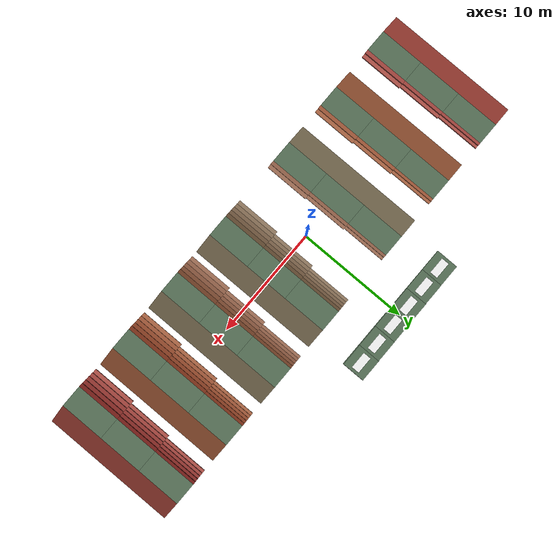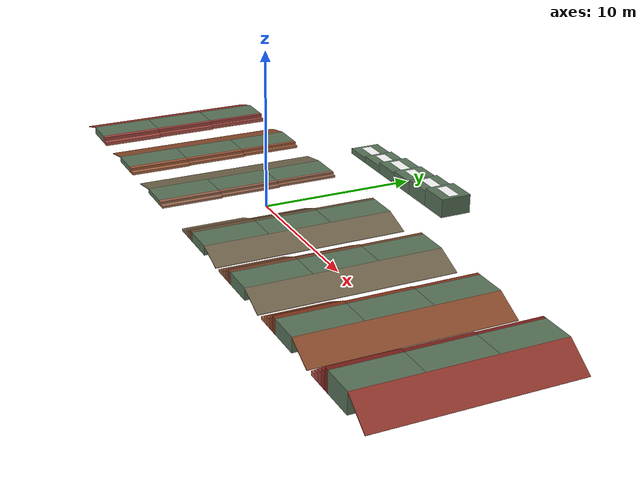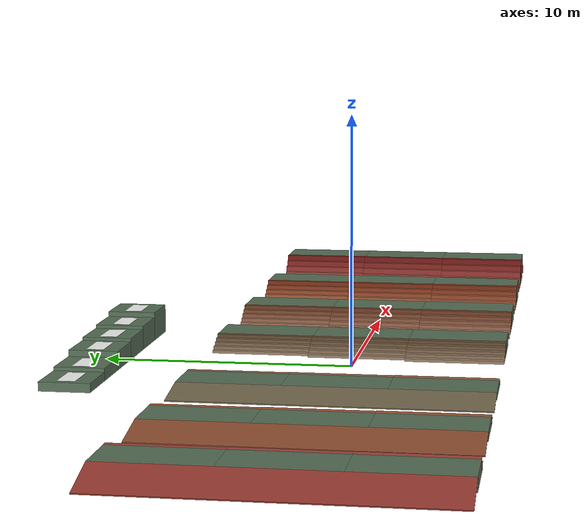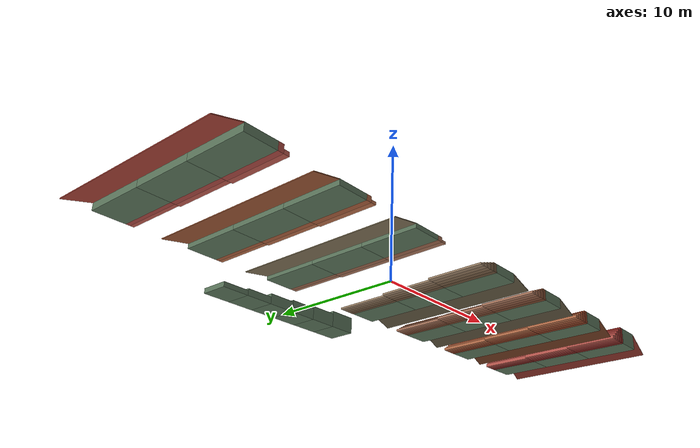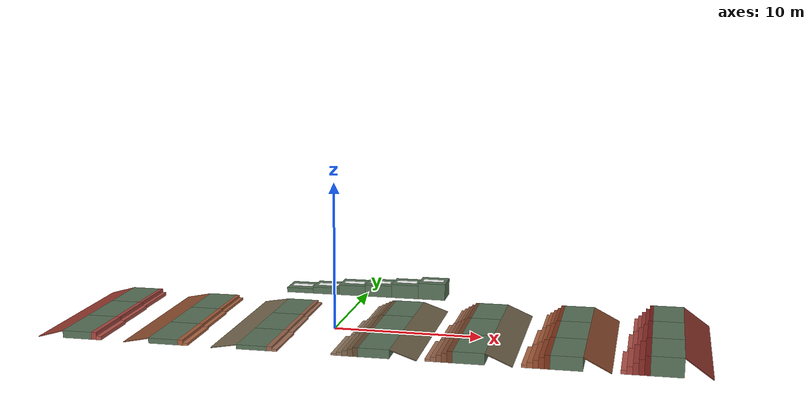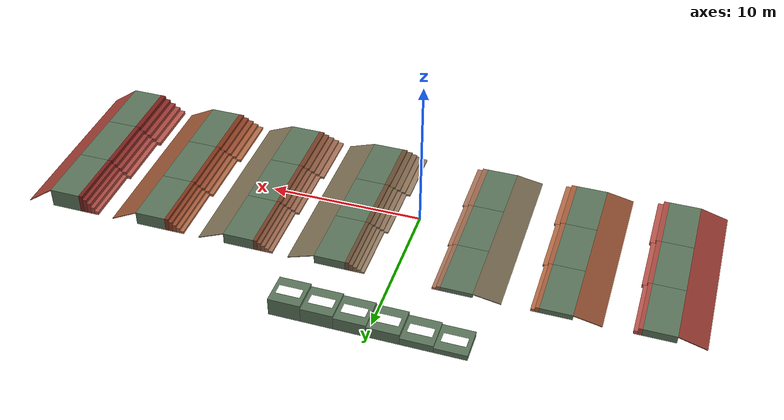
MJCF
<mujoco model="rough_terrain">

    <default>
        <default class="terrain">
            <geom contype="1" conaffinity="1" condim="3"
                  friction="1 0.01 0.01" group="0"/>
        </default>
    </default>

    <asset>
        <texture name="height_label_texture_036" type="2d" file="height_labels/36cm.png"/>
        <texture name="height_label_texture_050" type="2d" file="height_labels/50cm.png"/>
        <texture name="height_label_texture_075" type="2d" file="height_labels/75cm.png"/>
        <texture name="height_label_texture_087" type="2d" file="height_labels/87cm.png"/>
        <texture name="height_label_texture_100" type="2d" file="height_labels/100cm.png"/>
        <texture name="height_label_texture_120" type="2d" file="height_labels/120cm.png"/>

        <material name="height_label_material_036" texture="height_label_texture_036"
                  texrepeat="1 1" texuniform="false" specular="0" shininess="0"/>
        <material name="height_label_material_050" texture="height_label_texture_050"
                  texrepeat="1 1" texuniform="false" specular="0" shininess="0"/>
        <material name="height_label_material_075" texture="height_label_texture_075"
                  texrepeat="1 1" texuniform="false" specular="0" shininess="0"/>
        <material name="height_label_material_087" texture="height_label_texture_087"
                  texrepeat="1 1" texuniform="false" specular="0" shininess="0"/>
        <material name="height_label_material_100" texture="height_label_texture_100"
                  texrepeat="1 1" texuniform="false" specular="0" shininess="0"/>
        <material name="height_label_material_120" texture="height_label_texture_120"
                  texrepeat="1 1" texuniform="false" specular="0" shininess="0"/>
    </asset>

    <worldbody>
        <!-- ===== Rear two-step row 1: 0.15m rise per step ===== -->
        <body name="terrain_rear15_left" pos="-4.0 4.0 0">
            <geom name="stair_rear15_left_up_1" class="terrain"
                  type="box" size="0.125 2.0 0.075" pos="1.375 0 0.075"
                  rgba="0.65 0.45 0.35 1"/>
            <geom name="stair_rear15_left_up_2" class="terrain"
                  type="box" size="0.125 2.0 0.150" pos="1.125 0 0.150"
                  rgba="0.60 0.40 0.30 1"/>
            <geom name="stair_rear15_left_platform" class="terrain"
                  type="box" size="1.0 2.0 0.150" pos="0 0 0.150"
                  rgba="0.35 0.45 0.35 1"/>
        </body>

        <body name="terrain_rear15_mid" pos="-4.0 0 0">
            <geom name="stair_rear15_mid_up_1" class="terrain"
                  type="box" size="0.15 2.0 0.075" pos="1.45 0 0.075"
                  rgba="0.65 0.45 0.35 1"/>
            <geom name="stair_rear15_mid_up_2" class="terrain"
                  type="box" size="0.15 2.0 0.150" pos="1.15 0 0.150"
                  rgba="0.60 0.40 0.30 1"/>
            <geom name="stair_rear15_mid_platform" class="terrain"
                  type="box" size="1.0 2.0 0.150" pos="0 0 0.150"
                  rgba="0.35 0.45 0.35 1"/>
        </body>

        <body name="terrain_rear15_right" pos="-4.0 -4.0 0">
            <geom name="stair_rear15_right_up_1" class="terrain"
                  type="box" size="0.175 2.0 0.075" pos="1.525 0 0.075"
                  rgba="0.65 0.45 0.35 1"/>
            <geom name="stair_rear15_right_up_2" class="terrain"
                  type="box" size="0.175 2.0 0.150" pos="1.175 0 0.150"
                  rgba="0.60 0.40 0.30 1"/>
            <geom name="stair_rear15_right_platform" class="terrain"
                  type="box" size="1.0 2.0 0.150" pos="0 0 0.150"
                  rgba="0.35 0.45 0.35 1"/>
        </body>

        <body name="terrain_rear15_row_ramp" pos="-4.0 0 0">
            <geom name="ramp_rear15_row_down" class="terrain"
                  type="box" size="0.887764 6.0 0.025"
                  pos="-1.870776 0 0.125359"
                  quat="0.996399080 0 -0.084787220 0"
                  rgba="0.45 0.40 0.30 1"/>
        </body>

        <!-- ===== Rear two-step row 2: 0.18m rise per step ===== -->
        <body name="terrain_rear18_left" pos="-10.0 4.0 0">
            <geom name="stair_rear18_left_up_1" class="terrain"
                  type="box" size="0.125 2.0 0.090" pos="1.375 0 0.090"
                  rgba="0.70 0.42 0.28 1"/>
            <geom name="stair_rear18_left_up_2" class="terrain"
                  type="box" size="0.125 2.0 0.180" pos="1.125 0 0.180"
                  rgba="0.65 0.36 0.23 1"/>
            <geom name="stair_rear18_left_platform" class="terrain"
                  type="box" size="1.0 2.0 0.180" pos="0 0 0.180"
                  rgba="0.35 0.45 0.35 1"/>
        </body>

        <body name="terrain_rear18_mid" pos="-10.0 0 0">
            <geom name="stair_rear18_mid_up_1" class="terrain"
                  type="box" size="0.15 2.0 0.090" pos="1.45 0 0.090"
                  rgba="0.70 0.42 0.28 1"/>
            <geom name="stair_rear18_mid_up_2" class="terrain"
                  type="box" size="0.15 2.0 0.180" pos="1.15 0 0.180"
                  rgba="0.65 0.36 0.23 1"/>
            <geom name="stair_rear18_mid_platform" class="terrain"
                  type="box" size="1.0 2.0 0.180" pos="0 0 0.180"
                  rgba="0.35 0.45 0.35 1"/>
        </body>

        <body name="terrain_rear18_right" pos="-10.0 -4.0 0">
            <geom name="stair_rear18_right_up_1" class="terrain"
                  type="box" size="0.175 2.0 0.090" pos="1.525 0 0.090"
                  rgba="0.70 0.42 0.28 1"/>
            <geom name="stair_rear18_right_up_2" class="terrain"
                  type="box" size="0.175 2.0 0.180" pos="1.175 0 0.180"
                  rgba="0.65 0.36 0.23 1"/>
            <geom name="stair_rear18_right_platform" class="terrain"
                  type="box" size="1.0 2.0 0.180" pos="0 0 0.180"
                  rgba="0.35 0.45 0.35 1"/>
        </body>

        <body name="terrain_rear18_row_ramp" pos="-10.0 0 0">
            <geom name="ramp_rear18_row_down" class="terrain"
                  type="box" size="0.893322 6.0 0.025"
                  pos="-1.869963 0 0.155513"
                  quat="0.994859172 0 -0.101268098 0"
                  rgba="0.55 0.30 0.18 1"/>
        </body>

        <!-- ===== Rear two-step row 3: 0.25m rise per step ===== -->
        <body name="terrain_rear25_left" pos="-16.0 4.0 0">
            <geom name="stair_rear25_left_up_1" class="terrain"
                  type="box" size="0.125 2.0 0.125" pos="1.375 0 0.125"
                  rgba="0.72 0.34 0.30 1"/>
            <geom name="stair_rear25_left_up_2" class="terrain"
                  type="box" size="0.125 2.0 0.250" pos="1.125 0 0.250"
                  rgba="0.66 0.28 0.25 1"/>
            <geom name="stair_rear25_left_platform" class="terrain"
                  type="box" size="1.0 2.0 0.250" pos="0 0 0.250"
                  rgba="0.35 0.45 0.35 1"/>
        </body>

        <body name="terrain_rear25_mid" pos="-16.0 0 0">
            <geom name="stair_rear25_mid_up_1" class="terrain"
                  type="box" size="0.15 2.0 0.125" pos="1.45 0 0.125"
                  rgba="0.72 0.34 0.30 1"/>
            <geom name="stair_rear25_mid_up_2" class="terrain"
                  type="box" size="0.15 2.0 0.250" pos="1.15 0 0.250"
                  rgba="0.66 0.28 0.25 1"/>
            <geom name="stair_rear25_mid_platform" class="terrain"
                  type="box" size="1.0 2.0 0.250" pos="0 0 0.250"
                  rgba="0.35 0.45 0.35 1"/>
        </body>

        <body name="terrain_rear25_right" pos="-16.0 -4.0 0">
            <geom name="stair_rear25_right_up_1" class="terrain"
                  type="box" size="0.175 2.0 0.125" pos="1.525 0 0.125"
                  rgba="0.72 0.34 0.30 1"/>
            <geom name="stair_rear25_right_up_2" class="terrain"
                  type="box" size="0.175 2.0 0.250" pos="1.175 0 0.250"
                  rgba="0.66 0.28 0.25 1"/>
            <geom name="stair_rear25_right_platform" class="terrain"
                  type="box" size="1.0 2.0 0.250" pos="0 0 0.250"
                  rgba="0.35 0.45 0.35 1"/>
        </body>

        <body name="terrain_rear25_row_ramp" pos="-16.0 0 0">
            <geom name="ramp_rear25_row_down" class="terrain"
                  type="box" size="0.910014 6.0 0.025"
                  pos="-1.868132 0 0.225962"
                  quat="0.990334274 0 -0.138701212 0"
                  rgba="0.58 0.22 0.18 1"/>
        </body>

        <!-- ===== Middle row: 0.12m rise per step ===== -->
        <body name="terrain_mid_left" pos="4.0 4.0 0">
            <geom name="stair_mid_left_up_1" class="terrain"
                  type="box" size="0.125 2.0 0.06" pos="-2.125 0 0.06"
                  rgba="0.60 0.50 0.40 1"/>
            <geom name="stair_mid_left_up_2" class="terrain"
                  type="box" size="0.125 2.0 0.12" pos="-1.875 0 0.12"
                  rgba="0.55 0.45 0.35 1"/>
            <geom name="stair_mid_left_up_3" class="terrain"
                  type="box" size="0.125 2.0 0.18" pos="-1.625 0 0.18"
                  rgba="0.50 0.40 0.30 1"/>
            <geom name="stair_mid_left_up_4" class="terrain"
                  type="box" size="0.125 2.0 0.24" pos="-1.375 0 0.24"
                  rgba="0.45 0.35 0.25 1"/>
            <geom name="stair_mid_left_up_5" class="terrain"
                  type="box" size="0.125 2.0 0.30" pos="-1.125 0 0.30"
                  rgba="0.40 0.30 0.20 1"/>
            <geom name="stair_mid_left_platform" class="terrain"
                  type="box" size="1.0 2.0 0.30" pos="0 0 0.30"
                  rgba="0.35 0.45 0.35 1"/>
        </body>

        <body name="terrain_mid_mid" pos="4.0 0 0">
            <geom name="stair_mid_mid_up_1" class="terrain"
                  type="box" size="0.15 2.0 0.06" pos="-2.35 0 0.06"
                  rgba="0.60 0.50 0.40 1"/>
            <geom name="stair_mid_mid_up_2" class="terrain"
                  type="box" size="0.15 2.0 0.12" pos="-2.05 0 0.12"
                  rgba="0.55 0.45 0.35 1"/>
            <geom name="stair_mid_mid_up_3" class="terrain"
                  type="box" size="0.15 2.0 0.18" pos="-1.75 0 0.18"
                  rgba="0.50 0.40 0.30 1"/>
            <geom name="stair_mid_mid_up_4" class="terrain"
                  type="box" size="0.15 2.0 0.24" pos="-1.45 0 0.24"
                  rgba="0.45 0.35 0.25 1"/>
            <geom name="stair_mid_mid_up_5" class="terrain"
                  type="box" size="0.15 2.0 0.30" pos="-1.15 0 0.30"
                  rgba="0.40 0.30 0.20 1"/>
            <geom name="stair_mid_mid_platform" class="terrain"
                  type="box" size="1.0 2.0 0.30" pos="0 0 0.30"
                  rgba="0.35 0.45 0.35 1"/>
        </body>

        <body name="terrain_mid_right" pos="4.0 -4.0 0">
            <geom name="stair_mid_right_up_1" class="terrain"
                  type="box" size="0.175 2.0 0.06" pos="-2.575 0 0.06"
                  rgba="0.60 0.50 0.40 1"/>
            <geom name="stair_mid_right_up_2" class="terrain"
                  type="box" size="0.175 2.0 0.12" pos="-2.225 0 0.12"
                  rgba="0.55 0.45 0.35 1"/>
            <geom name="stair_mid_right_up_3" class="terrain"
                  type="box" size="0.175 2.0 0.18" pos="-1.875 0 0.18"
                  rgba="0.50 0.40 0.30 1"/>
            <geom name="stair_mid_right_up_4" class="terrain"
                  type="box" size="0.175 2.0 0.24" pos="-1.525 0 0.24"
                  rgba="0.45 0.35 0.25 1"/>
            <geom name="stair_mid_right_up_5" class="terrain"
                  type="box" size="0.175 2.0 0.30" pos="-1.175 0 0.30"
                  rgba="0.40 0.30 0.20 1"/>
            <geom name="stair_mid_right_platform" class="terrain"
                  type="box" size="1.0 2.0 0.30" pos="0 0 0.30"
                  rgba="0.35 0.45 0.35 1"/>
        </body>

        <body name="terrain_mid_row_ramp" pos="4.0 0 0">
            <geom name="ramp_mid_row_down" class="terrain"
                  type="box" size="0.925000 6.0 0.025"
                  pos="1.866892 0 0.276351"
                  quat="0.986393924 0 0.164398987 0"
                  rgba="0.45 0.40 0.30 1"/>
        </body>

        <!-- ===== Front row: 0.15m rise per step ===== -->
        <body name="terrain_front_left" pos="10.0 4.0 0">
            <geom name="stair_front_left_up_1" class="terrain"
                  type="box" size="0.125 2.0 0.075" pos="-2.125 0 0.075"
                  rgba="0.65 0.45 0.35 1"/>
            <geom name="stair_front_left_up_2" class="terrain"
                  type="box" size="0.125 2.0 0.150" pos="-1.875 0 0.150"
                  rgba="0.60 0.40 0.30 1"/>
            <geom name="stair_front_left_up_3" class="terrain"
                  type="box" size="0.125 2.0 0.225" pos="-1.625 0 0.225"
                  rgba="0.55 0.35 0.25 1"/>
            <geom name="stair_front_left_up_4" class="terrain"
                  type="box" size="0.125 2.0 0.300" pos="-1.375 0 0.300"
                  rgba="0.50 0.30 0.20 1"/>
            <geom name="stair_front_left_up_5" class="terrain"
                  type="box" size="0.125 2.0 0.375" pos="-1.125 0 0.375"
                  rgba="0.45 0.25 0.15 1"/>
            <geom name="stair_front_left_platform" class="terrain"
                  type="box" size="1.0 2.0 0.375" pos="0 0 0.375"
                  rgba="0.35 0.45 0.35 1"/>
        </body>

        <body name="terrain_front_mid" pos="10.0 0 0">
            <geom name="stair_front_mid_up_1" class="terrain"
                  type="box" size="0.15 2.0 0.075" pos="-2.35 0 0.075"
                  rgba="0.65 0.45 0.35 1"/>
            <geom name="stair_front_mid_up_2" class="terrain"
                  type="box" size="0.15 2.0 0.150" pos="-2.05 0 0.150"
                  rgba="0.60 0.40 0.30 1"/>
            <geom name="stair_front_mid_up_3" class="terrain"
                  type="box" size="0.15 2.0 0.225" pos="-1.75 0 0.225"
                  rgba="0.55 0.35 0.25 1"/>
            <geom name="stair_front_mid_up_4" class="terrain"
                  type="box" size="0.15 2.0 0.300" pos="-1.45 0 0.300"
                  rgba="0.50 0.30 0.20 1"/>
            <geom name="stair_front_mid_up_5" class="terrain"
                  type="box" size="0.15 2.0 0.375" pos="-1.15 0 0.375"
                  rgba="0.45 0.25 0.15 1"/>
            <geom name="stair_front_mid_platform" class="terrain"
                  type="box" size="1.0 2.0 0.375" pos="0 0 0.375"
                  rgba="0.35 0.45 0.35 1"/>
        </body>

        <body name="terrain_front_right" pos="10.0 -4.0 0">
            <geom name="stair_front_right_up_1" class="terrain"
                  type="box" size="0.175 2.0 0.075" pos="-2.575 0 0.075"
                  rgba="0.65 0.45 0.35 1"/>
            <geom name="stair_front_right_up_2" class="terrain"
                  type="box" size="0.175 2.0 0.150" pos="-2.225 0 0.150"
                  rgba="0.60 0.40 0.30 1"/>
            <geom name="stair_front_right_up_3" class="terrain"
                  type="box" size="0.175 2.0 0.225" pos="-1.875 0 0.225"
                  rgba="0.55 0.35 0.25 1"/>
            <geom name="stair_front_right_up_4" class="terrain"
                  type="box" size="0.175 2.0 0.300" pos="-1.525 0 0.300"
                  rgba="0.50 0.30 0.20 1"/>
            <geom name="stair_front_right_up_5" class="terrain"
                  type="box" size="0.175 2.0 0.375" pos="-1.175 0 0.375"
                  rgba="0.45 0.25 0.15 1"/>
            <geom name="stair_front_right_platform" class="terrain"
                  type="box" size="1.0 2.0 0.375" pos="0 0 0.375"
                  rgba="0.35 0.45 0.35 1"/>
        </body>

        <body name="terrain_front_row_ramp" pos="10.0 0 0">
            <geom name="ramp_front_row_down" class="terrain"
                  type="box" size="0.951972 6.0 0.025"
                  pos="1.865152 0 0.352021"
                  quat="0.979577723 0 0.201065872 0"
                  rgba="0.45 0.40 0.30 1"/>
        </body>
        <!-- ===== High row 1: 0.18m rise per step ===== -->
        <body name="terrain_high18_left" pos="16.0 4.0 0">
            <geom name="stair_high18_left_up_1" class="terrain"
                  type="box" size="0.125 2.0 0.090" pos="-2.125 0 0.090"
                  rgba="0.70 0.42 0.28 1"/>
            <geom name="stair_high18_left_up_2" class="terrain"
                  type="box" size="0.125 2.0 0.180" pos="-1.875 0 0.180"
                  rgba="0.65 0.36 0.23 1"/>
            <geom name="stair_high18_left_up_3" class="terrain"
                  type="box" size="0.125 2.0 0.270" pos="-1.625 0 0.270"
                  rgba="0.60 0.30 0.18 1"/>
            <geom name="stair_high18_left_up_4" class="terrain"
                  type="box" size="0.125 2.0 0.360" pos="-1.375 0 0.360"
                  rgba="0.55 0.25 0.14 1"/>
            <geom name="stair_high18_left_up_5" class="terrain"
                  type="box" size="0.125 2.0 0.450" pos="-1.125 0 0.450"
                  rgba="0.50 0.20 0.10 1"/>
            <geom name="stair_high18_left_platform" class="terrain"
                  type="box" size="1.0 2.0 0.450" pos="0 0 0.450"
                  rgba="0.35 0.45 0.35 1"/>
        </body>

        <body name="terrain_high18_mid" pos="16.0 0.0 0">
            <geom name="stair_high18_mid_up_1" class="terrain"
                  type="box" size="0.15 2.0 0.090" pos="-2.35 0 0.090"
                  rgba="0.70 0.42 0.28 1"/>
            <geom name="stair_high18_mid_up_2" class="terrain"
                  type="box" size="0.15 2.0 0.180" pos="-2.05 0 0.180"
                  rgba="0.65 0.36 0.23 1"/>
            <geom name="stair_high18_mid_up_3" class="terrain"
                  type="box" size="0.15 2.0 0.270" pos="-1.75 0 0.270"
                  rgba="0.60 0.30 0.18 1"/>
            <geom name="stair_high18_mid_up_4" class="terrain"
                  type="box" size="0.15 2.0 0.360" pos="-1.45 0 0.360"
                  rgba="0.55 0.25 0.14 1"/>
            <geom name="stair_high18_mid_up_5" class="terrain"
                  type="box" size="0.15 2.0 0.450" pos="-1.15 0 0.450"
                  rgba="0.50 0.20 0.10 1"/>
            <geom name="stair_high18_mid_platform" class="terrain"
                  type="box" size="1.0 2.0 0.450" pos="0 0 0.450"
                  rgba="0.35 0.45 0.35 1"/>
        </body>

        <body name="terrain_high18_right" pos="16.0 -4.0 0">
            <geom name="stair_high18_right_up_1" class="terrain"
                  type="box" size="0.175 2.0 0.090" pos="-2.575 0 0.090"
                  rgba="0.70 0.42 0.28 1"/>
            <geom name="stair_high18_right_up_2" class="terrain"
                  type="box" size="0.175 2.0 0.180" pos="-2.225 0 0.180"
                  rgba="0.65 0.36 0.23 1"/>
            <geom name="stair_high18_right_up_3" class="terrain"
                  type="box" size="0.175 2.0 0.270" pos="-1.875 0 0.270"
                  rgba="0.60 0.30 0.18 1"/>
            <geom name="stair_high18_right_up_4" class="terrain"
                  type="box" size="0.175 2.0 0.360" pos="-1.525 0 0.360"
                  rgba="0.55 0.25 0.14 1"/>
            <geom name="stair_high18_right_up_5" class="terrain"
                  type="box" size="0.175 2.0 0.450" pos="-1.175 0 0.450"
                  rgba="0.50 0.20 0.10 1"/>
            <geom name="stair_high18_right_platform" class="terrain"
                  type="box" size="1.0 2.0 0.450" pos="0 0 0.450"
                  rgba="0.35 0.45 0.35 1"/>
        </body>

        <body name="terrain_high18_row_ramp" pos="16.0 0 0">
            <geom name="ramp_high18_row_down" class="terrain"
                  type="box" size="0.983933 6.0 0.025"
                  pos="1.863566 0 0.427768"
                  quat="0.971927930 0 0.235278768 0"
                  rgba="0.55 0.30 0.18 1"/>
        </body>

        <!-- ===== High row 2: 0.25m rise per step ===== -->
        <body name="terrain_high25_left" pos="22.0 4.0 0">
            <geom name="stair_high25_left_up_1" class="terrain"
                  type="box" size="0.125 2.0 0.125" pos="-2.125 0 0.125"
                  rgba="0.72 0.34 0.30 1"/>
            <geom name="stair_high25_left_up_2" class="terrain"
                  type="box" size="0.125 2.0 0.250" pos="-1.875 0 0.250"
                  rgba="0.66 0.28 0.25 1"/>
            <geom name="stair_high25_left_up_3" class="terrain"
                  type="box" size="0.125 2.0 0.375" pos="-1.625 0 0.375"
                  rgba="0.60 0.22 0.20 1"/>
            <geom name="stair_high25_left_up_4" class="terrain"
                  type="box" size="0.125 2.0 0.500" pos="-1.375 0 0.500"
                  rgba="0.54 0.17 0.15 1"/>
            <geom name="stair_high25_left_up_5" class="terrain"
                  type="box" size="0.125 2.0 0.625" pos="-1.125 0 0.625"
                  rgba="0.48 0.12 0.10 1"/>
            <geom name="stair_high25_left_platform" class="terrain"
                  type="box" size="1.0 2.0 0.625" pos="0 0 0.625"
                  rgba="0.35 0.45 0.35 1"/>
        </body>

        <body name="terrain_high25_mid" pos="22.0 0.0 0">
            <geom name="stair_high25_mid_up_1" class="terrain"
                  type="box" size="0.15 2.0 0.125" pos="-2.35 0 0.125"
                  rgba="0.72 0.34 0.30 1"/>
            <geom name="stair_high25_mid_up_2" class="terrain"
                  type="box" size="0.15 2.0 0.250" pos="-2.05 0 0.250"
                  rgba="0.66 0.28 0.25 1"/>
            <geom name="stair_high25_mid_up_3" class="terrain"
                  type="box" size="0.15 2.0 0.375" pos="-1.75 0 0.375"
                  rgba="0.60 0.22 0.20 1"/>
            <geom name="stair_high25_mid_up_4" class="terrain"
                  type="box" size="0.15 2.0 0.500" pos="-1.45 0 0.500"
                  rgba="0.54 0.17 0.15 1"/>
            <geom name="stair_high25_mid_up_5" class="terrain"
                  type="box" size="0.15 2.0 0.625" pos="-1.15 0 0.625"
                  rgba="0.48 0.12 0.10 1"/>
            <geom name="stair_high25_mid_platform" class="terrain"
                  type="box" size="1.0 2.0 0.625" pos="0 0 0.625"
                  rgba="0.35 0.45 0.35 1"/>
        </body>

        <body name="terrain_high25_right" pos="22.0 -4.0 0">
            <geom name="stair_high25_right_up_1" class="terrain"
                  type="box" size="0.175 2.0 0.125" pos="-2.575 0 0.125"
                  rgba="0.72 0.34 0.30 1"/>
            <geom name="stair_high25_right_up_2" class="terrain"
                  type="box" size="0.175 2.0 0.250" pos="-2.225 0 0.250"
                  rgba="0.66 0.28 0.25 1"/>
            <geom name="stair_high25_right_up_3" class="terrain"
                  type="box" size="0.175 2.0 0.375" pos="-1.875 0 0.375"
                  rgba="0.60 0.22 0.20 1"/>
            <geom name="stair_high25_right_up_4" class="terrain"
                  type="box" size="0.175 2.0 0.500" pos="-1.525 0 0.500"
                  rgba="0.54 0.17 0.15 1"/>
            <geom name="stair_high25_right_up_5" class="terrain"
                  type="box" size="0.175 2.0 0.625" pos="-1.175 0 0.625"
                  rgba="0.48 0.12 0.10 1"/>
            <geom name="stair_high25_right_platform" class="terrain"
                  type="box" size="1.0 2.0 0.625" pos="0 0 0.625"
                  rgba="0.35 0.45 0.35 1"/>
        </body>

        <body name="terrain_high25_row_ramp" pos="22.0 0 0">
            <geom name="ramp_high25_row_down" class="terrain"
                  type="box" size="1.075291 6.0 0.025"
                  pos="1.860469 0 0.604657"
                  quat="0.952295509 0 0.305177431 0"
                  rgba="0.58 0.22 0.18 1"/>
        </body>

        <!-- ===== Left high platforms: 2m deep, 2m wide ===== -->
        <body name="terrain_left_high_platforms" pos="0 10.0 0">
            <geom name="platform_left_high_036" class="terrain"
                  type="box" size="1.0 1.0 0.180" pos="-5.0 0 0.180"
                  rgba="0.35 0.45 0.35 1"/>
            <geom name="label_left_high_036" type="box"
                  size="0.75 0.35 0.002" pos="-5.0 0 0.363"
                  material="height_label_material_036" rgba="1 1 1 1"
                  contype="0" conaffinity="0" group="2"/>
            <geom name="platform_left_high_050" class="terrain"
                  type="box" size="1.0 1.0 0.250" pos="-3.0 0 0.250"
                  rgba="0.35 0.45 0.35 1"/>
            <geom name="label_left_high_050" type="box"
                  size="0.75 0.35 0.002" pos="-3.0 0 0.503"
                  material="height_label_material_050" rgba="1 1 1 1"
                  contype="0" conaffinity="0" group="2"/>
            <geom name="platform_left_high_075" class="terrain"
                  type="box" size="1.0 1.0 0.375" pos="-1.0 0 0.375"
                  rgba="0.35 0.45 0.35 1"/>
            <geom name="label_left_high_075" type="box"
                  size="0.75 0.35 0.002" pos="-1.0 0 0.753"
                  material="height_label_material_075" rgba="1 1 1 1"
                  contype="0" conaffinity="0" group="2"/>
            <geom name="platform_left_high_087" class="terrain"
                  type="box" size="1.0 1.0 0.435" pos="1.0 0 0.435"
                  rgba="0.35 0.45 0.35 1"/>
            <geom name="label_left_high_087" type="box"
                  size="0.75 0.35 0.002" pos="1.0 0 0.873"
                  material="height_label_material_087" rgba="1 1 1 1"
                  contype="0" conaffinity="0" group="2"/>
            <geom name="platform_left_high_100" class="terrain"
                  type="box" size="1.0 1.0 0.500" pos="3.0 0 0.500"
                  rgba="0.35 0.45 0.35 1"/>
            <geom name="label_left_high_100" type="box"
                  size="0.75 0.35 0.002" pos="3.0 0 1.003"
                  material="height_label_material_100" rgba="1 1 1 1"
                  contype="0" conaffinity="0" group="2"/>
            <geom name="platform_left_high_120" class="terrain"
                  type="box" size="1.0 1.0 0.600" pos="5.0 0 0.600"
                  rgba="0.35 0.45 0.35 1"/>
            <geom name="label_left_high_120" type="box"
                  size="0.75 0.35 0.002" pos="5.0 0 1.203"
                  material="height_label_material_120" rgba="1 1 1 1"
                  contype="0" conaffinity="0" group="2"/>
        </body>
    </worldbody>

</mujoco>
